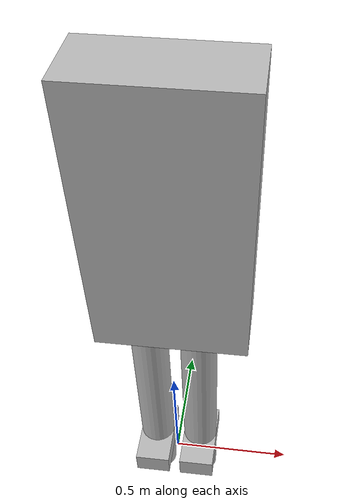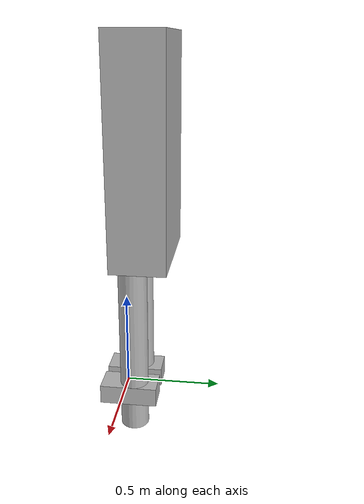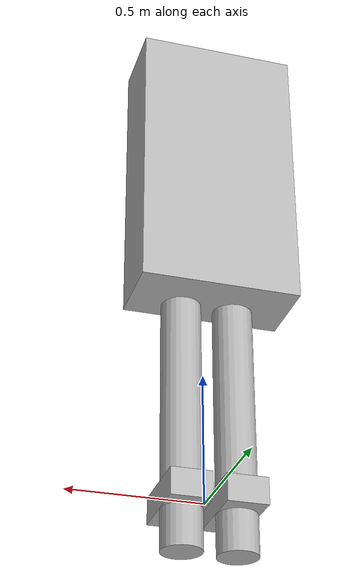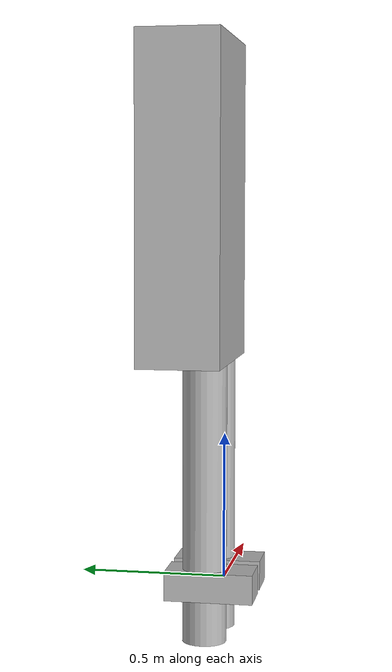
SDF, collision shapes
<?xml version='1.0'?>
<sdf version='1.6'>
  <model name='Homem'>
    <link name='link_0'>
      <pose frame=''>0 0 0 1.56 -0 0</pose>
      <inertial>
        <mass>70</mass>
        <inertia>
          <ixx>0.166667</ixx>
          <ixy>0</ixy>
          <ixz>0</ixz>
          <iyy>0.166667</iyy>
          <iyz>0</iyz>
          <izz>0.166667</izz>
        </inertia>
      </inertial>
      <visual name='visual'>
        <pose frame=''>-0.0 0 -0.1 0 -0 0</pose>
        <geometry>
          <mesh>
            <uri>file://isr-testbed/homem/homem.dae</uri>
            <scale>1 1 1</scale>
          </mesh>
        </geometry>
        <cast_shadows>1</cast_shadows>
        <transparency>0</transparency>
      </visual>
      <collision name='collision_body'>
        <laser_retro>0</laser_retro>
        <max_contacts>10</max_contacts>
        <pose frame=''>0 1.3 -0.1 -1.56 -0 0</pose>
        <geometry>
            <box>
                <size>0.6 0.28 1.1</size>
            </box>
        </geometry>
      </collision>
      <collision name='collision_leg1'>
        <laser_retro>0</laser_retro>
        <max_contacts>10</max_contacts>
        <pose frame=''>0.1 0.3 -0.05 -1.56 -0 0</pose>
        <geometry>
          <cylinder>
            <radius>0.075</radius>
            <length>1</length>
          </cylinder>
        </geometry>
      </collision>
      <collision name='collision_leg2'>
        <laser_retro>0</laser_retro>
        <max_contacts>10</max_contacts>
        <pose frame=''>-0.1 0.3 -0.05 -1.56 -0 0</pose>
        <geometry>
          <cylinder>
            <radius>0.075</radius>
            <length>1</length>
          </cylinder>
        </geometry>
      </collision>
      <collision name='collision_feet2'>
        <laser_retro>0</laser_retro>
        <max_contacts>10</max_contacts>
        <pose frame=''>-0.1 0 -0.03 -1.56 -0 0</pose>
        <geometry>
          <box>
            <size>0.15 0.3 0.1</size>
          </box>
        </geometry>
      </collision>
      <collision name='collision_feet1'>
        <laser_retro>0</laser_retro>
        <max_contacts>10</max_contacts>
        <pose frame=''>0.1 0 -0.03 -1.56 -0 0</pose>
        <geometry>
          <box>
            <size>0.15 0.3 0.1</size>
          </box>
        </geometry>
      </collision>
    </link>
    <static>1</static>
  </model>
</sdf>
